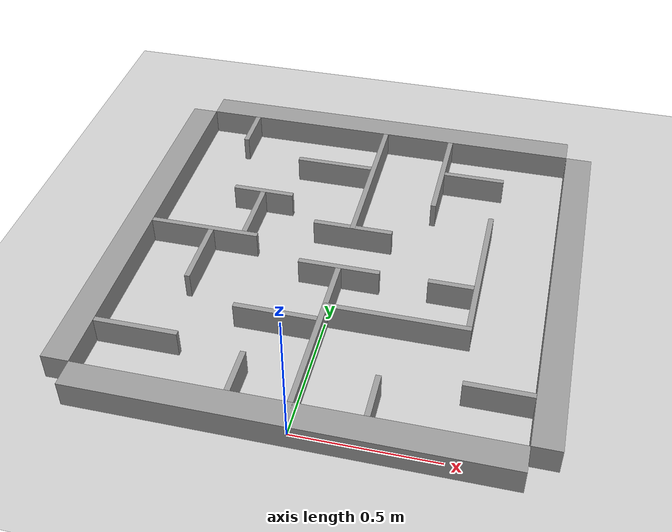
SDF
<sdf version="1.6">
 <world name="default">
  <physics type="ode">
   <ode><solver><type>quick</type><iters>50</iters><friction_model>cone_model</friction_model></solver></ode>
  </physics>
  <light name="sun" type="directional">
   <pose>0 0 10 0 -0 0</pose>
   <diffuse>0.8 0.8 0.8 1</diffuse>
   <specular>0.1 0.1 0.1 1</specular>
   <attenuation>
    <range>1000</range>
    <constant>0.9</constant>
    <linear>0.01</linear>
    <quadratic>0.001</quadratic>
   </attenuation>
   <direction>-0.5 0.5 -1</direction>
  </light>
  <model name="ground_plane">
   <static>1</static>
   <link name="link">
    <collision name="collision">
     <geometry><plane><normal>0 0 1</normal><size>100 100</size></plane></geometry>
     <surface><friction><ode><mu>100</mu><mu2>50</mu2></ode></friction></surface>
    </collision>
    <visual name="visual">
     <cast_shadows>0</cast_shadows>
     <geometry><plane><normal>0 0 1</normal><size>100 100</size></plane></geometry>
     <material>
      <script><uri>file://media/materials/scripts/gazebo.material</uri><name>Gazebo/Grey</name></script>
     </material>
    </visual>
   </link>
  </model>
  <gravity>0 0 -9.8</gravity>
  <magnetic_field>6e-06 2.3e-05 -4.2e-05</magnetic_field>
  <atmosphere type="adiabatic"/>
  <physics name="default_physics" default="0" type="ode">
   <max_step_size>0.001</max_step_size>
   <real_time_factor>1</real_time_factor>
   <real_time_update_rate>1000</real_time_update_rate>
  </physics>
  <scene><ambient>0.4 0.4 0.4 1</ambient><background>0.7 0.7 0.7 1</background><shadows>1</shadows></scene>
  <spherical_coordinates>
   <surface_model>EARTH_WGS84</surface_model>
   <latitude_deg>0</latitude_deg>
   <longitude_deg>0</longitude_deg>
   <elevation>0</elevation>
   <heading_deg>0</heading_deg>
  </spherical_coordinates>
  <model name="vector_fanal">
   <link name="link_4">
    <pose>0.033887 -0.771661 0 0 -0 0</pose>
    <inertial>
     <mass>1</mass>
     <inertia>
      <ixx>0.166667</ixx>
      <ixy>0</ixy>
      <ixz>0</ixz>
      <iyy>0.166667</iyy>
      <iyz>0</iyz>
      <izz>0.166667</izz>
     </inertia>
    </inertial>
    <visual name="visual">
     <geometry><box><size>1.5 0.1 0.1</size></box></geometry>
     <material>
      <lighting>1</lighting>
      <script><uri>file://media/materials/scripts/gazebo.material</uri><name>Gazebo/Grey</name></script>
      <ambient>0.3 0.3 0.3 1</ambient>
      <diffuse>0.7 0.7 0.7 1</diffuse>
      <specular>0.01 0.01 0.01 1</specular>
      <emissive>0 0 0 1</emissive>
      <shader type="vertex"><normal_map>__default__</normal_map></shader>
     </material>
    </visual>
    <collision name="collision">
     <geometry><box><size>1.5 0.1 0.1</size></box></geometry>
     <surface>
      <friction>
       <ode><mu>1</mu><mu2>1</mu2><fdir1>0 0 0</fdir1><slip1>0</slip1><slip2>0</slip2></ode>
       <torsional>
        <coefficient>1</coefficient>
        <patch_radius>0</patch_radius>
        <surface_radius>0</surface_radius>
        <use_patch_radius>1</use_patch_radius>
        <ode><slip>0</slip></ode>
       </torsional>
      </friction>
      <bounce><restitution_coefficient>0</restitution_coefficient><threshold>1e+06</threshold></bounce>
      <contact>
       <collide_without_contact>0</collide_without_contact>
       <collide_without_contact_bitmask>1</collide_without_contact_bitmask>
       <collide_bitmask>1</collide_bitmask>
       <ode>
        <soft_cfm>0</soft_cfm>
        <soft_erp>0.2</soft_erp>
        <kp>1e+13</kp>
        <kd>1</kd>
        <max_vel>0.01</max_vel>
        <min_depth>0</min_depth>
       </ode>
       <bullet>
        <split_impulse>1</split_impulse>
        <split_impulse_penetration_threshold>-0.01</split_impulse_penetration_threshold>
        <soft_cfm>0</soft_cfm>
        <soft_erp>0.2</soft_erp>
        <kp>1e+13</kp>
        <kd>1</kd>
       </bullet>
      </contact>
     </surface>
    </collision>
   </link>
   <link name="link_4_clone">
    <pose>0.033887 0.82834 0 0 -0 0</pose>
    <inertial>
     <mass>1</mass>
     <inertia>
      <ixx>0.166667</ixx>
      <ixy>0</ixy>
      <ixz>0</ixz>
      <iyy>0.166667</iyy>
      <iyz>0</iyz>
      <izz>0.166667</izz>
     </inertia>
    </inertial>
    <visual name="visual">
     <geometry><box><size>1.5 0.1 0.1</size></box></geometry>
     <material>
      <lighting>1</lighting>
      <script><uri>file://media/materials/scripts/gazebo.material</uri><name>Gazebo/Grey</name></script>
      <ambient>0.3 0.3 0.3 1</ambient>
      <diffuse>0.7 0.7 0.7 1</diffuse>
      <specular>0.01 0.01 0.01 1</specular>
      <emissive>0 0 0 1</emissive>
      <shader type="vertex"><normal_map>__default__</normal_map></shader>
     </material>
    </visual>
    <collision name="collision">
     <geometry><box><size>1.5 0.1 0.1</size></box></geometry>
     <surface>
      <friction>
       <ode><mu>1</mu><mu2>1</mu2><fdir1>0 0 0</fdir1><slip1>0</slip1><slip2>0</slip2></ode>
       <torsional>
        <coefficient>1</coefficient>
        <patch_radius>0</patch_radius>
        <surface_radius>0</surface_radius>
        <use_patch_radius>1</use_patch_radius>
        <ode><slip>0</slip></ode>
       </torsional>
      </friction>
      <bounce><restitution_coefficient>0</restitution_coefficient><threshold>1e+06</threshold></bounce>
      <contact>
       <collide_without_contact>0</collide_without_contact>
       <collide_without_contact_bitmask>1</collide_without_contact_bitmask>
       <collide_bitmask>1</collide_bitmask>
       <ode>
        <soft_cfm>0</soft_cfm>
        <soft_erp>0.2</soft_erp>
        <kp>1e+13</kp>
        <kd>1</kd>
        <max_vel>0.01</max_vel>
        <min_depth>0</min_depth>
       </ode>
       <bullet>
        <split_impulse>1</split_impulse>
        <split_impulse_penetration_threshold>-0.01</split_impulse_penetration_threshold>
        <soft_cfm>0</soft_cfm>
        <soft_erp>0.2</soft_erp>
        <kp>1e+13</kp>
        <kd>1</kd>
       </bullet>
      </contact>
     </surface>
    </collision>
   </link>
   <link name="link_4_clone_0">
    <pose>0.833887 0.02834 0 0 -0 1.57</pose>
    <inertial>
     <mass>1</mass>
     <inertia>
      <ixx>0.166667</ixx>
      <ixy>0</ixy>
      <ixz>0</ixz>
      <iyy>0.166667</iyy>
      <iyz>0</iyz>
      <izz>0.166667</izz>
     </inertia>
    </inertial>
    <visual name="visual">
     <geometry><box><size>1.5 0.1 0.1</size></box></geometry>
     <material>
      <lighting>1</lighting>
      <script><uri>file://media/materials/scripts/gazebo.material</uri><name>Gazebo/Grey</name></script>
      <ambient>0.3 0.3 0.3 1</ambient>
      <diffuse>0.7 0.7 0.7 1</diffuse>
      <specular>0.01 0.01 0.01 1</specular>
      <emissive>0 0 0 1</emissive>
      <shader type="vertex"><normal_map>__default__</normal_map></shader>
     </material>
    </visual>
    <collision name="collision">
     <geometry><box><size>1.5 0.1 0.1</size></box></geometry>
     <surface>
      <friction>
       <ode><mu>1</mu><mu2>1</mu2><fdir1>0 0 0</fdir1><slip1>0</slip1><slip2>0</slip2></ode>
       <torsional>
        <coefficient>1</coefficient>
        <patch_radius>0</patch_radius>
        <surface_radius>0</surface_radius>
        <use_patch_radius>1</use_patch_radius>
        <ode><slip>0</slip></ode>
       </torsional>
      </friction>
      <bounce><restitution_coefficient>0</restitution_coefficient><threshold>1e+06</threshold></bounce>
      <contact>
       <collide_without_contact>0</collide_without_contact>
       <collide_without_contact_bitmask>1</collide_without_contact_bitmask>
       <collide_bitmask>1</collide_bitmask>
       <ode>
        <soft_cfm>0</soft_cfm>
        <soft_erp>0.2</soft_erp>
        <kp>1e+13</kp>
        <kd>1</kd>
        <max_vel>0.01</max_vel>
        <min_depth>0</min_depth>
       </ode>
       <bullet>
        <split_impulse>1</split_impulse>
        <split_impulse_penetration_threshold>-0.01</split_impulse_penetration_threshold>
        <soft_cfm>0</soft_cfm>
        <soft_erp>0.2</soft_erp>
        <kp>1e+13</kp>
        <kd>1</kd>
       </bullet>
      </contact>
     </surface>
    </collision>
   </link>
   <link name="link_4_clone_0_clone">
    <pose>-0.766113 0.02834 0 0 -0 1.57</pose>
    <inertial>
     <mass>1</mass>
     <inertia>
      <ixx>0.166667</ixx>
      <ixy>0</ixy>
      <ixz>0</ixz>
      <iyy>0.166667</iyy>
      <iyz>0</iyz>
      <izz>0.166667</izz>
     </inertia>
    </inertial>
    <visual name="visual">
     <geometry><box><size>1.5 0.1 0.1</size></box></geometry>
     <material>
      <lighting>1</lighting>
      <script><uri>file://media/materials/scripts/gazebo.material</uri><name>Gazebo/Grey</name></script>
      <ambient>0.3 0.3 0.3 1</ambient>
      <diffuse>0.7 0.7 0.7 1</diffuse>
      <specular>0.01 0.01 0.01 1</specular>
      <emissive>0 0 0 1</emissive>
      <shader type="vertex"><normal_map>__default__</normal_map></shader>
     </material>
    </visual>
    <collision name="collision">
     <geometry><box><size>1.5 0.1 0.1</size></box></geometry>
     <surface>
      <friction>
       <ode><mu>1</mu><mu2>1</mu2><fdir1>0 0 0</fdir1><slip1>0</slip1><slip2>0</slip2></ode>
       <torsional>
        <coefficient>1</coefficient>
        <patch_radius>0</patch_radius>
        <surface_radius>0</surface_radius>
        <use_patch_radius>1</use_patch_radius>
        <ode><slip>0</slip></ode>
       </torsional>
      </friction>
      <bounce><restitution_coefficient>0</restitution_coefficient><threshold>1e+06</threshold></bounce>
      <contact>
       <collide_without_contact>0</collide_without_contact>
       <collide_without_contact_bitmask>1</collide_without_contact_bitmask>
       <collide_bitmask>1</collide_bitmask>
       <ode>
        <soft_cfm>0</soft_cfm>
        <soft_erp>0.2</soft_erp>
        <kp>1e+13</kp>
        <kd>1</kd>
        <max_vel>0.01</max_vel>
        <min_depth>0</min_depth>
       </ode>
       <bullet>
        <split_impulse>1</split_impulse>
        <split_impulse_penetration_threshold>-0.01</split_impulse_penetration_threshold>
        <soft_cfm>0</soft_cfm>
        <soft_erp>0.2</soft_erp>
        <kp>1e+13</kp>
        <kd>1</kd>
       </bullet>
      </contact>
     </surface>
    </collision>
   </link>
   <link name="link_5">
    <pose>-0.509003 0.02834 0 0 -0 0</pose>
    <inertial>
     <mass>2.06513</mass>
     <inertia>
      <ixx>0.344189</ixx>
      <ixy>0</ixy>
      <ixz>0</ixz>
      <iyy>0.906037</iyy>
      <iyz>0</iyz>
      <izz>0.906037</izz>
     </inertia>
    </inertial>
    <visual name="visual">
     <geometry><box><size>0.413025 0.02 0.1</size></box></geometry>
     <material>
      <lighting>1</lighting>
      <script><uri>file://media/materials/scripts/gazebo.material</uri><name>Gazebo/Grey</name></script>
      <ambient>0.3 0.3 0.3 1</ambient>
      <diffuse>0.7 0.7 0.7 1</diffuse>
      <specular>0.01 0.01 0.01 1</specular>
      <emissive>0 0 0 1</emissive>
      <shader type="vertex"><normal_map>__default__</normal_map></shader>
     </material>
    </visual>
    <collision name="collision">
     <geometry><box><size>0.413025 0.02 0.1</size></box></geometry>
     <surface>
      <friction>
       <ode><mu>1</mu><mu2>1</mu2><fdir1>0 0 0</fdir1><slip1>0</slip1><slip2>0</slip2></ode>
       <torsional>
        <coefficient>1</coefficient>
        <patch_radius>0</patch_radius>
        <surface_radius>0</surface_radius>
        <use_patch_radius>1</use_patch_radius>
        <ode><slip>0</slip></ode>
       </torsional>
      </friction>
      <bounce><restitution_coefficient>0</restitution_coefficient><threshold>1e+06</threshold></bounce>
      <contact>
       <collide_without_contact>0</collide_without_contact>
       <collide_without_contact_bitmask>1</collide_without_contact_bitmask>
       <collide_bitmask>1</collide_bitmask>
       <ode>
        <soft_cfm>0</soft_cfm>
        <soft_erp>0.2</soft_erp>
        <kp>1e+13</kp>
        <kd>1</kd>
        <max_vel>0.01</max_vel>
        <min_depth>0</min_depth>
       </ode>
       <bullet>
        <split_impulse>1</split_impulse>
        <split_impulse_penetration_threshold>-0.01</split_impulse_penetration_threshold>
        <soft_cfm>0</soft_cfm>
        <soft_erp>0.2</soft_erp>
        <kp>1e+13</kp>
        <kd>1</kd>
       </bullet>
      </contact>
     </surface>
    </collision>
   </link>
   <link name="link_5_clone">
    <pose>0.033887 -0.071661 0 0 -0 0</pose>
    <inertial>
     <mass>1</mass>
     <inertia>
      <ixx>0.166667</ixx>
      <ixy>0</ixy>
      <ixz>0</ixz>
      <iyy>0.166667</iyy>
      <iyz>0</iyz>
      <izz>0.166667</izz>
     </inertia>
    </inertial>
    <visual name="visual">
     <geometry><box><size>0.3 0.02 0.1</size></box></geometry>
     <material>
      <lighting>1</lighting>
      <script><uri>file://media/materials/scripts/gazebo.material</uri><name>Gazebo/Grey</name></script>
      <ambient>0.3 0.3 0.3 1</ambient>
      <diffuse>0.7 0.7 0.7 1</diffuse>
      <specular>0.01 0.01 0.01 1</specular>
      <emissive>0 0 0 1</emissive>
      <shader type="vertex"><normal_map>__default__</normal_map></shader>
     </material>
    </visual>
    <collision name="collision">
     <geometry><box><size>0.3 0.02 0.1</size></box></geometry>
     <surface>
      <friction>
       <ode><mu>1</mu><mu2>1</mu2><fdir1>0 0 0</fdir1><slip1>0</slip1><slip2>0</slip2></ode>
       <torsional>
        <coefficient>1</coefficient>
        <patch_radius>0</patch_radius>
        <surface_radius>0</surface_radius>
        <use_patch_radius>1</use_patch_radius>
        <ode><slip>0</slip></ode>
       </torsional>
      </friction>
      <bounce><restitution_coefficient>0</restitution_coefficient><threshold>1e+06</threshold></bounce>
      <contact>
       <collide_without_contact>0</collide_without_contact>
       <collide_without_contact_bitmask>1</collide_without_contact_bitmask>
       <collide_bitmask>1</collide_bitmask>
       <ode>
        <soft_cfm>0</soft_cfm>
        <soft_erp>0.2</soft_erp>
        <kp>1e+13</kp>
        <kd>1</kd>
        <max_vel>0.01</max_vel>
        <min_depth>0</min_depth>
       </ode>
       <bullet>
        <split_impulse>1</split_impulse>
        <split_impulse_penetration_threshold>-0.01</split_impulse_penetration_threshold>
        <soft_cfm>0</soft_cfm>
        <soft_erp>0.2</soft_erp>
        <kp>1e+13</kp>
        <kd>1</kd>
       </bullet>
      </contact>
     </surface>
    </collision>
   </link>
   <link name="link_5_clone_clone">
    <pose>0.033887 0.154222 0 0 -0 0</pose>
    <inertial>
     <mass>1</mass>
     <inertia>
      <ixx>0.166667</ixx>
      <ixy>0</ixy>
      <ixz>0</ixz>
      <iyy>0.166667</iyy>
      <iyz>0</iyz>
      <izz>0.166667</izz>
     </inertia>
    </inertial>
    <visual name="visual">
     <geometry><box><size>0.3 0.02 0.1</size></box></geometry>
     <material>
      <lighting>1</lighting>
      <script><uri>file://media/materials/scripts/gazebo.material</uri><name>Gazebo/Grey</name></script>
      <ambient>0.3 0.3 0.3 1</ambient>
      <diffuse>0.7 0.7 0.7 1</diffuse>
      <specular>0.01 0.01 0.01 1</specular>
      <emissive>0 0 0 1</emissive>
      <shader type="vertex"><normal_map>__default__</normal_map></shader>
     </material>
    </visual>
    <collision name="collision">
     <geometry><box><size>0.3 0.02 0.1</size></box></geometry>
     <surface>
      <friction>
       <ode><mu>1</mu><mu2>1</mu2><fdir1>0 0 0</fdir1><slip1>0</slip1><slip2>0</slip2></ode>
       <torsional>
        <coefficient>1</coefficient>
        <patch_radius>0</patch_radius>
        <surface_radius>0</surface_radius>
        <use_patch_radius>1</use_patch_radius>
        <ode><slip>0</slip></ode>
       </torsional>
      </friction>
      <bounce><restitution_coefficient>0</restitution_coefficient><threshold>1e+06</threshold></bounce>
      <contact>
       <collide_without_contact>0</collide_without_contact>
       <collide_without_contact_bitmask>1</collide_without_contact_bitmask>
       <collide_bitmask>1</collide_bitmask>
       <ode>
        <soft_cfm>0</soft_cfm>
        <soft_erp>0.2</soft_erp>
        <kp>1e+13</kp>
        <kd>1</kd>
        <max_vel>0.01</max_vel>
        <min_depth>0</min_depth>
       </ode>
       <bullet>
        <split_impulse>1</split_impulse>
        <split_impulse_penetration_threshold>-0.01</split_impulse_penetration_threshold>
        <soft_cfm>0</soft_cfm>
        <soft_erp>0.2</soft_erp>
        <kp>1e+13</kp>
        <kd>1</kd>
       </bullet>
      </contact>
     </surface>
    </collision>
   </link>
   <link name="link_5_clone_clone_0">
    <pose>0.033887 -0.40691 0 0 -0 1.57</pose>
    <inertial>
     <mass>2.25878</mass>
     <inertia><ixx>0.376464</ixx><ixy>0</ixy><ixz>0</ixz><iyy>1.14861</iyy><iyz>0</iyz><izz>1.14861</izz></inertia>
    </inertial>
    <visual name="visual">
     <geometry><box><size>0.67763 0.02 0.1</size></box></geometry>
     <material>
      <lighting>1</lighting>
      <script><uri>file://media/materials/scripts/gazebo.material</uri><name>Gazebo/Grey</name></script>
      <ambient>0.3 0.3 0.3 1</ambient>
      <diffuse>0.7 0.7 0.7 1</diffuse>
      <specular>0.01 0.01 0.01 1</specular>
      <emissive>0 0 0 1</emissive>
      <shader type="vertex"><normal_map>__default__</normal_map></shader>
     </material>
    </visual>
    <collision name="collision">
     <geometry><box><size>0.67763 0.02 0.1</size></box></geometry>
     <surface>
      <friction>
       <ode><mu>1</mu><mu2>1</mu2><fdir1>0 0 0</fdir1><slip1>0</slip1><slip2>0</slip2></ode>
       <torsional>
        <coefficient>1</coefficient>
        <patch_radius>0</patch_radius>
        <surface_radius>0</surface_radius>
        <use_patch_radius>1</use_patch_radius>
        <ode><slip>0</slip></ode>
       </torsional>
      </friction>
      <bounce><restitution_coefficient>0</restitution_coefficient><threshold>1e+06</threshold></bounce>
      <contact>
       <collide_without_contact>0</collide_without_contact>
       <collide_without_contact_bitmask>1</collide_without_contact_bitmask>
       <collide_bitmask>1</collide_bitmask>
       <ode>
        <soft_cfm>0</soft_cfm>
        <soft_erp>0.2</soft_erp>
        <kp>1e+13</kp>
        <kd>1</kd>
        <max_vel>0.01</max_vel>
        <min_depth>0</min_depth>
       </ode>
       <bullet>
        <split_impulse>1</split_impulse>
        <split_impulse_penetration_threshold>-0.01</split_impulse_penetration_threshold>
        <soft_cfm>0</soft_cfm>
        <soft_erp>0.2</soft_erp>
        <kp>1e+13</kp>
        <kd>1</kd>
       </bullet>
      </contact>
     </surface>
    </collision>
   </link>
   <link name="link_5_clone_clone_0_clone">
    <pose>0.033887 0.462189 0 0 -0 1.57</pose>
    <inertial>
     <mass>2.10764</mass>
     <inertia>
      <ixx>0.351273</ixx>
      <ixy>0</ixy>
      <ixz>0</ixz>
      <iyy>0.955839</iyy>
      <iyz>0</iyz>
      <izz>0.955839</izz>
     </inertia>
    </inertial>
    <visual name="visual">
     <geometry><box><size>0.632286 0.02 0.1</size></box></geometry>
     <material>
      <lighting>1</lighting>
      <script><uri>file://media/materials/scripts/gazebo.material</uri><name>Gazebo/Grey</name></script>
      <ambient>0.3 0.3 0.3 1</ambient>
      <diffuse>0.7 0.7 0.7 1</diffuse>
      <specular>0.01 0.01 0.01 1</specular>
      <emissive>0 0 0 1</emissive>
      <shader type="vertex"><normal_map>__default__</normal_map></shader>
     </material>
    </visual>
    <collision name="collision">
     <geometry><box><size>0.632286 0.02 0.1</size></box></geometry>
     <surface>
      <friction>
       <ode><mu>1</mu><mu2>1</mu2><fdir1>0 0 0</fdir1><slip1>0</slip1><slip2>0</slip2></ode>
       <torsional>
        <coefficient>1</coefficient>
        <patch_radius>0</patch_radius>
        <surface_radius>0</surface_radius>
        <use_patch_radius>1</use_patch_radius>
        <ode><slip>0</slip></ode>
       </torsional>
      </friction>
      <bounce><restitution_coefficient>0</restitution_coefficient><threshold>1e+06</threshold></bounce>
      <contact>
       <collide_without_contact>0</collide_without_contact>
       <collide_without_contact_bitmask>1</collide_without_contact_bitmask>
       <collide_bitmask>1</collide_bitmask>
       <ode>
        <soft_cfm>0</soft_cfm>
        <soft_erp>0.2</soft_erp>
        <kp>1e+13</kp>
        <kd>1</kd>
        <max_vel>0.01</max_vel>
        <min_depth>0</min_depth>
       </ode>
       <bullet>
        <split_impulse>1</split_impulse>
        <split_impulse_penetration_threshold>-0.01</split_impulse_penetration_threshold>
        <soft_cfm>0</soft_cfm>
        <soft_erp>0.2</soft_erp>
        <kp>1e+13</kp>
        <kd>1</kd>
       </bullet>
      </contact>
     </surface>
    </collision>
   </link>
   <link name="link_5_clone_clone_0_clone_0">
    <pose>0.533722 0.02834 0 0 -0 1.57</pose>
    <inertial>
     <mass>1.95613</mass>
     <inertia><ixx>0.326023</ixx><ixy>0</ixy><ixz>0</ixz><iyy>0.78677</iyy><iyz>0</iyz><izz>0.78677</izz></inertia>
    </inertial>
    <visual name="visual">
     <geometry><box><size>0.586837 0.02 0.1</size></box></geometry>
     <material>
      <lighting>1</lighting>
      <script><uri>file://media/materials/scripts/gazebo.material</uri><name>Gazebo/Grey</name></script>
      <ambient>0.3 0.3 0.3 1</ambient>
      <diffuse>0.7 0.7 0.7 1</diffuse>
      <specular>0.01 0.01 0.01 1</specular>
      <emissive>0 0 0 1</emissive>
      <shader type="vertex"><normal_map>__default__</normal_map></shader>
     </material>
    </visual>
    <collision name="collision">
     <geometry><box><size>0.586837 0.02 0.1</size></box></geometry>
     <surface>
      <friction>
       <ode><mu>1</mu><mu2>1</mu2><fdir1>0 0 0</fdir1><slip1>0</slip1><slip2>0</slip2></ode>
       <torsional>
        <coefficient>1</coefficient>
        <patch_radius>0</patch_radius>
        <surface_radius>0</surface_radius>
        <use_patch_radius>1</use_patch_radius>
        <ode><slip>0</slip></ode>
       </torsional>
      </friction>
      <bounce><restitution_coefficient>0</restitution_coefficient><threshold>1e+06</threshold></bounce>
      <contact>
       <collide_without_contact>0</collide_without_contact>
       <collide_without_contact_bitmask>1</collide_without_contact_bitmask>
       <collide_bitmask>1</collide_bitmask>
       <ode>
        <soft_cfm>0</soft_cfm>
        <soft_erp>0.2</soft_erp>
        <kp>1e+13</kp>
        <kd>1</kd>
        <max_vel>0.01</max_vel>
        <min_depth>0</min_depth>
       </ode>
       <bullet>
        <split_impulse>1</split_impulse>
        <split_impulse_penetration_threshold>-0.01</split_impulse_penetration_threshold>
        <soft_cfm>0</soft_cfm>
        <soft_erp>0.2</soft_erp>
        <kp>1e+13</kp>
        <kd>1</kd>
       </bullet>
      </contact>
     </surface>
    </collision>
   </link>
   <link name="link_5_clone_clone_0_clone_0_clone">
    <pose>0.307404 0.563042 0 0 -0 1.57</pose>
    <inertial>
     <mass>1.43527</mass>
     <inertia>
      <ixx>0.239213</ixx>
      <ixy>0</ixy>
      <ixz>0</ixz>
      <iyy>0.365998</iyy>
      <iyz>0</iyz>
      <izz>0.365998</izz>
     </inertia>
    </inertial>
    <visual name="visual">
     <geometry><box><size>0.43058 0.02 0.1</size></box></geometry>
     <material>
      <lighting>1</lighting>
      <script><uri>file://media/materials/scripts/gazebo.material</uri><name>Gazebo/Grey</name></script>
      <ambient>0.3 0.3 0.3 1</ambient>
      <diffuse>0.7 0.7 0.7 1</diffuse>
      <specular>0.01 0.01 0.01 1</specular>
      <emissive>0 0 0 1</emissive>
      <shader type="vertex"><normal_map>__default__</normal_map></shader>
     </material>
    </visual>
    <collision name="collision">
     <geometry><box><size>0.43058 0.02 0.1</size></box></geometry>
     <surface>
      <friction>
       <ode><mu>1</mu><mu2>1</mu2><fdir1>0 0 0</fdir1><slip1>0</slip1><slip2>0</slip2></ode>
       <torsional>
        <coefficient>1</coefficient>
        <patch_radius>0</patch_radius>
        <surface_radius>0</surface_radius>
        <use_patch_radius>1</use_patch_radius>
        <ode><slip>0</slip></ode>
       </torsional>
      </friction>
      <bounce><restitution_coefficient>0</restitution_coefficient><threshold>1e+06</threshold></bounce>
      <contact>
       <collide_without_contact>0</collide_without_contact>
       <collide_without_contact_bitmask>1</collide_without_contact_bitmask>
       <collide_bitmask>1</collide_bitmask>
       <ode>
        <soft_cfm>0</soft_cfm>
        <soft_erp>0.2</soft_erp>
        <kp>1e+13</kp>
        <kd>1</kd>
        <max_vel>0.01</max_vel>
        <min_depth>0</min_depth>
       </ode>
       <bullet>
        <split_impulse>1</split_impulse>
        <split_impulse_penetration_threshold>-0.01</split_impulse_penetration_threshold>
        <soft_cfm>0</soft_cfm>
        <soft_erp>0.2</soft_erp>
        <kp>1e+13</kp>
        <kd>1</kd>
       </bullet>
      </contact>
     </surface>
    </collision>
   </link>
   <link name="link_5_clone_clone_1">
    <pose>-0.126383 -0.34543 0 0 -0 0</pose>
    <inertial>
     <mass>1</mass>
     <inertia>
      <ixx>0.166667</ixx>
      <ixy>0</ixy>
      <ixz>0</ixz>
      <iyy>0.166667</iyy>
      <iyz>0</iyz>
      <izz>0.166667</izz>
     </inertia>
    </inertial>
    <visual name="visual">
     <geometry><box><size>0.3 0.02 0.1</size></box></geometry>
     <material>
      <lighting>1</lighting>
      <script><uri>file://media/materials/scripts/gazebo.material</uri><name>Gazebo/Grey</name></script>
      <ambient>0.3 0.3 0.3 1</ambient>
      <diffuse>0.7 0.7 0.7 1</diffuse>
      <specular>0.01 0.01 0.01 1</specular>
      <emissive>0 0 0 1</emissive>
      <shader type="vertex"><normal_map>__default__</normal_map></shader>
     </material>
    </visual>
    <collision name="collision">
     <geometry><box><size>0.3 0.02 0.1</size></box></geometry>
     <surface>
      <friction>
       <ode><mu>1</mu><mu2>1</mu2><fdir1>0 0 0</fdir1><slip1>0</slip1><slip2>0</slip2></ode>
       <torsional>
        <coefficient>1</coefficient>
        <patch_radius>0</patch_radius>
        <surface_radius>0</surface_radius>
        <use_patch_radius>1</use_patch_radius>
        <ode><slip>0</slip></ode>
       </torsional>
      </friction>
      <bounce><restitution_coefficient>0</restitution_coefficient><threshold>1e+06</threshold></bounce>
      <contact>
       <collide_without_contact>0</collide_without_contact>
       <collide_without_contact_bitmask>1</collide_without_contact_bitmask>
       <collide_bitmask>1</collide_bitmask>
       <ode>
        <soft_cfm>0</soft_cfm>
        <soft_erp>0.2</soft_erp>
        <kp>1e+13</kp>
        <kd>1</kd>
        <max_vel>0.01</max_vel>
        <min_depth>0</min_depth>
       </ode>
       <bullet>
        <split_impulse>1</split_impulse>
        <split_impulse_penetration_threshold>-0.01</split_impulse_penetration_threshold>
        <soft_cfm>0</soft_cfm>
        <soft_erp>0.2</soft_erp>
        <kp>1e+13</kp>
        <kd>1</kd>
       </bullet>
      </contact>
     </surface>
    </collision>
   </link>
   <link name="link_5_clone_clone_1_clone">
    <pose>-0.126365 0.529198 0 0 -0 0</pose>
    <inertial>
     <mass>1</mass>
     <inertia>
      <ixx>0.166667</ixx>
      <ixy>0</ixy>
      <ixz>0</ixz>
      <iyy>0.166667</iyy>
      <iyz>0</iyz>
      <izz>0.166667</izz>
     </inertia>
    </inertial>
    <visual name="visual">
     <geometry><box><size>0.3 0.02 0.1</size></box></geometry>
     <material>
      <lighting>1</lighting>
      <script><uri>file://media/materials/scripts/gazebo.material</uri><name>Gazebo/Grey</name></script>
      <ambient>0.3 0.3 0.3 1</ambient>
      <diffuse>0.7 0.7 0.7 1</diffuse>
      <specular>0.01 0.01 0.01 1</specular>
      <emissive>0 0 0 1</emissive>
      <shader type="vertex"><normal_map>__default__</normal_map></shader>
     </material>
    </visual>
    <collision name="collision">
     <geometry><box><size>0.3 0.02 0.1</size></box></geometry>
     <surface>
      <friction>
       <ode><mu>1</mu><mu2>1</mu2><fdir1>0 0 0</fdir1><slip1>0</slip1><slip2>0</slip2></ode>
       <torsional>
        <coefficient>1</coefficient>
        <patch_radius>0</patch_radius>
        <surface_radius>0</surface_radius>
        <use_patch_radius>1</use_patch_radius>
        <ode><slip>0</slip></ode>
       </torsional>
      </friction>
      <bounce><restitution_coefficient>0</restitution_coefficient><threshold>1e+06</threshold></bounce>
      <contact>
       <collide_without_contact>0</collide_without_contact>
       <collide_without_contact_bitmask>1</collide_without_contact_bitmask>
       <collide_bitmask>1</collide_bitmask>
       <ode>
        <soft_cfm>0</soft_cfm>
        <soft_erp>0.2</soft_erp>
        <kp>1e+13</kp>
        <kd>1</kd>
        <max_vel>0.01</max_vel>
        <min_depth>0</min_depth>
       </ode>
       <bullet>
        <split_impulse>1</split_impulse>
        <split_impulse_penetration_threshold>-0.01</split_impulse_penetration_threshold>
        <soft_cfm>0</soft_cfm>
        <soft_erp>0.2</soft_erp>
        <kp>1e+13</kp>
        <kd>1</kd>
       </bullet>
      </contact>
     </surface>
    </collision>
   </link>
   <link name="link_5_clone_clone_1_clone_0">
    <pose>0.286063 -0.275087 0 0 -0 0</pose>
    <inertial>
     <mass>1.7193</mass>
     <inertia>
      <ixx>0.28655</ixx>
      <ixy>0</ixy>
      <ixz>0</ixz>
      <iyy>0.566794</iyy>
      <iyz>0</iyz>
      <izz>0.566794</izz>
     </inertia>
    </inertial>
    <visual name="visual">
     <geometry><box><size>0.515786 0.02 0.1</size></box></geometry>
     <material>
      <lighting>1</lighting>
      <script><uri>file://media/materials/scripts/gazebo.material</uri><name>Gazebo/Grey</name></script>
      <ambient>0.3 0.3 0.3 1</ambient>
      <diffuse>0.7 0.7 0.7 1</diffuse>
      <specular>0.01 0.01 0.01 1</specular>
      <emissive>0 0 0 1</emissive>
      <shader type="vertex"><normal_map>__default__</normal_map></shader>
     </material>
    </visual>
    <collision name="collision">
     <geometry><box><size>0.515786 0.02 0.1</size></box></geometry>
     <surface>
      <friction>
       <ode><mu>1</mu><mu2>1</mu2><fdir1>0 0 0</fdir1><slip1>0</slip1><slip2>0</slip2></ode>
       <torsional>
        <coefficient>1</coefficient>
        <patch_radius>0</patch_radius>
        <surface_radius>0</surface_radius>
        <use_patch_radius>1</use_patch_radius>
        <ode><slip>0</slip></ode>
       </torsional>
      </friction>
      <bounce><restitution_coefficient>0</restitution_coefficient><threshold>1e+06</threshold></bounce>
      <contact>
       <collide_without_contact>0</collide_without_contact>
       <collide_without_contact_bitmask>1</collide_without_contact_bitmask>
       <collide_bitmask>1</collide_bitmask>
       <ode>
        <soft_cfm>0</soft_cfm>
        <soft_erp>0.2</soft_erp>
        <kp>1e+13</kp>
        <kd>1</kd>
        <max_vel>0.01</max_vel>
        <min_depth>0</min_depth>
       </ode>
       <bullet>
        <split_impulse>1</split_impulse>
        <split_impulse_penetration_threshold>-0.01</split_impulse_penetration_threshold>
        <soft_cfm>0</soft_cfm>
        <soft_erp>0.2</soft_erp>
        <kp>1e+13</kp>
        <kd>1</kd>
       </bullet>
      </contact>
     </surface>
    </collision>
   </link>
   <link name="link_5_clone_clone_2">
    <pose>-0.480968 -0.113574 0 0 -0 1.57</pose>
    <inertial>
     <mass>0.879488</mass>
     <inertia>
      <ixx>0.146582</ixx>
      <ixy>0</ixy>
      <ixz>0</ixz>
      <iyy>0.129981</iyy>
      <iyz>0</iyz>
      <izz>0.129981</izz>
     </inertia>
    </inertial>
    <visual name="visual">
     <geometry><box><size>0.263846 0.02 0.1</size></box></geometry>
     <material>
      <lighting>1</lighting>
      <script><uri>file://media/materials/scripts/gazebo.material</uri><name>Gazebo/Grey</name></script>
      <ambient>0.3 0.3 0.3 1</ambient>
      <diffuse>0.7 0.7 0.7 1</diffuse>
      <specular>0.01 0.01 0.01 1</specular>
      <emissive>0 0 0 1</emissive>
      <shader type="vertex"><normal_map>__default__</normal_map></shader>
     </material>
    </visual>
    <collision name="collision">
     <geometry><box><size>0.263846 0.02 0.1</size></box></geometry>
     <surface>
      <friction>
       <ode><mu>1</mu><mu2>1</mu2><fdir1>0 0 0</fdir1><slip1>0</slip1><slip2>0</slip2></ode>
       <torsional>
        <coefficient>1</coefficient>
        <patch_radius>0</patch_radius>
        <surface_radius>0</surface_radius>
        <use_patch_radius>1</use_patch_radius>
        <ode><slip>0</slip></ode>
       </torsional>
      </friction>
      <bounce><restitution_coefficient>0</restitution_coefficient><threshold>1e+06</threshold></bounce>
      <contact>
       <collide_without_contact>0</collide_without_contact>
       <collide_without_contact_bitmask>1</collide_without_contact_bitmask>
       <collide_bitmask>1</collide_bitmask>
       <ode>
        <soft_cfm>0</soft_cfm>
        <soft_erp>0.2</soft_erp>
        <kp>1e+13</kp>
        <kd>1</kd>
        <max_vel>0.01</max_vel>
        <min_depth>0</min_depth>
       </ode>
       <bullet>
        <split_impulse>1</split_impulse>
        <split_impulse_penetration_threshold>-0.01</split_impulse_penetration_threshold>
        <soft_cfm>0</soft_cfm>
        <soft_erp>0.2</soft_erp>
        <kp>1e+13</kp>
        <kd>1</kd>
       </bullet>
      </contact>
     </surface>
    </collision>
   </link>
   <link name="link_5_clone_clone_2_clone">
    <pose>-0.175087 -0.635546 0 0 -0 1.57</pose>
    <inertial>
     <mass>0.574042</mass>
     <inertia>
      <ixx>0.0956741</ixx>
      <ixy>0</ixy>
      <ixz>0</ixz>
      <iyy>0.0636004</iyy>
      <iyz>0</iyz>
      <izz>0.0636004</izz>
     </inertia>
    </inertial>
    <visual name="visual">
     <geometry><box><size>0.172211 0.02 0.1</size></box></geometry>
     <material>
      <lighting>1</lighting>
      <script><uri>file://media/materials/scripts/gazebo.material</uri><name>Gazebo/Grey</name></script>
      <ambient>0.3 0.3 0.3 1</ambient>
      <diffuse>0.7 0.7 0.7 1</diffuse>
      <specular>0.01 0.01 0.01 1</specular>
      <emissive>0 0 0 1</emissive>
      <shader type="vertex"><normal_map>__default__</normal_map></shader>
     </material>
    </visual>
    <collision name="collision">
     <geometry><box><size>0.172211 0.02 0.1</size></box></geometry>
     <surface>
      <friction>
       <ode><mu>1</mu><mu2>1</mu2><fdir1>0 0 0</fdir1><slip1>0</slip1><slip2>0</slip2></ode>
       <torsional>
        <coefficient>1</coefficient>
        <patch_radius>0</patch_radius>
        <surface_radius>0</surface_radius>
        <use_patch_radius>1</use_patch_radius>
        <ode><slip>0</slip></ode>
       </torsional>
      </friction>
      <bounce><restitution_coefficient>0</restitution_coefficient><threshold>1e+06</threshold></bounce>
      <contact>
       <collide_without_contact>0</collide_without_contact>
       <collide_without_contact_bitmask>1</collide_without_contact_bitmask>
       <collide_bitmask>1</collide_bitmask>
       <ode>
        <soft_cfm>0</soft_cfm>
        <soft_erp>0.2</soft_erp>
        <kp>1e+13</kp>
        <kd>1</kd>
        <max_vel>0.01</max_vel>
        <min_depth>0</min_depth>
       </ode>
       <bullet>
        <split_impulse>1</split_impulse>
        <split_impulse_penetration_threshold>-0.01</split_impulse_penetration_threshold>
        <soft_cfm>0</soft_cfm>
        <soft_erp>0.2</soft_erp>
        <kp>1e+13</kp>
        <kd>1</kd>
       </bullet>
      </contact>
     </surface>
    </collision>
   </link>
   <link name="link_5_clone_clone_2_clone_0">
    <pose>-0.356129 0.170305 0 0 -0 1.57</pose>
    <inertial>
     <mass>0.879488</mass>
     <inertia>
      <ixx>0.146582</ixx>
      <ixy>0</ixy>
      <ixz>0</ixz>
      <iyy>0.129981</iyy>
      <iyz>0</iyz>
      <izz>0.129981</izz>
     </inertia>
    </inertial>
    <visual name="visual">
     <geometry><box><size>0.263846 0.02 0.1</size></box></geometry>
     <material>
      <lighting>1</lighting>
      <script><uri>file://media/materials/scripts/gazebo.material</uri><name>Gazebo/Grey</name></script>
      <ambient>0.3 0.3 0.3 1</ambient>
      <diffuse>0.7 0.7 0.7 1</diffuse>
      <specular>0.01 0.01 0.01 1</specular>
      <emissive>0 0 0 1</emissive>
      <shader type="vertex"><normal_map>__default__</normal_map></shader>
     </material>
    </visual>
    <collision name="collision">
     <geometry><box><size>0.263846 0.02 0.1</size></box></geometry>
     <surface>
      <friction>
       <ode><mu>1</mu><mu2>1</mu2><fdir1>0 0 0</fdir1><slip1>0</slip1><slip2>0</slip2></ode>
       <torsional>
        <coefficient>1</coefficient>
        <patch_radius>0</patch_radius>
        <surface_radius>0</surface_radius>
        <use_patch_radius>1</use_patch_radius>
        <ode><slip>0</slip></ode>
       </torsional>
      </friction>
      <bounce><restitution_coefficient>0</restitution_coefficient><threshold>1e+06</threshold></bounce>
      <contact>
       <collide_without_contact>0</collide_without_contact>
       <collide_without_contact_bitmask>1</collide_without_contact_bitmask>
       <collide_bitmask>1</collide_bitmask>
       <ode>
        <soft_cfm>0</soft_cfm>
        <soft_erp>0.2</soft_erp>
        <kp>1e+13</kp>
        <kd>1</kd>
        <max_vel>0.01</max_vel>
        <min_depth>0</min_depth>
       </ode>
       <bullet>
        <split_impulse>1</split_impulse>
        <split_impulse_penetration_threshold>-0.01</split_impulse_penetration_threshold>
        <soft_cfm>0</soft_cfm>
        <soft_erp>0.2</soft_erp>
        <kp>1e+13</kp>
        <kd>1</kd>
       </bullet>
      </contact>
     </surface>
    </collision>
   </link>
   <link name="link_5_clone_clone_2_clone_clone">
    <pose>-0.525733 0.692226 0 0 -0 1.57</pose>
    <inertial>
     <mass>0.574042</mass>
     <inertia>
      <ixx>0.0956741</ixx>
      <ixy>0</ixy>
      <ixz>0</ixz>
      <iyy>0.0636004</iyy>
      <iyz>0</iyz>
      <izz>0.0636004</izz>
     </inertia>
    </inertial>
    <visual name="visual">
     <geometry><box><size>0.172211 0.02 0.1</size></box></geometry>
     <material>
      <lighting>1</lighting>
      <script><uri>file://media/materials/scripts/gazebo.material</uri><name>Gazebo/Grey</name></script>
      <ambient>0.3 0.3 0.3 1</ambient>
      <diffuse>0.7 0.7 0.7 1</diffuse>
      <specular>0.01 0.01 0.01 1</specular>
      <emissive>0 0 0 1</emissive>
      <shader type="vertex"><normal_map>__default__</normal_map></shader>
     </material>
    </visual>
    <collision name="collision">
     <geometry><box><size>0.172211 0.02 0.1</size></box></geometry>
     <surface>
      <friction>
       <ode><mu>1</mu><mu2>1</mu2><fdir1>0 0 0</fdir1><slip1>0</slip1><slip2>0</slip2></ode>
       <torsional>
        <coefficient>1</coefficient>
        <patch_radius>0</patch_radius>
        <surface_radius>0</surface_radius>
        <use_patch_radius>1</use_patch_radius>
        <ode><slip>0</slip></ode>
       </torsional>
      </friction>
      <bounce><restitution_coefficient>0</restitution_coefficient><threshold>1e+06</threshold></bounce>
      <contact>
       <collide_without_contact>0</collide_without_contact>
       <collide_without_contact_bitmask>1</collide_without_contact_bitmask>
       <collide_bitmask>1</collide_bitmask>
       <ode>
        <soft_cfm>0</soft_cfm>
        <soft_erp>0.2</soft_erp>
        <kp>1e+13</kp>
        <kd>1</kd>
        <max_vel>0.01</max_vel>
        <min_depth>0</min_depth>
       </ode>
       <bullet>
        <split_impulse>1</split_impulse>
        <split_impulse_penetration_threshold>-0.01</split_impulse_penetration_threshold>
        <soft_cfm>0</soft_cfm>
        <soft_erp>0.2</soft_erp>
        <kp>1e+13</kp>
        <kd>1</kd>
       </bullet>
      </contact>
     </surface>
    </collision>
   </link>
   <link name="link_5_clone_clone_2_clone_clone_0">
    <pose>0.280559 -0.635547 0 0 -0 1.57</pose>
    <inertial>
     <mass>0.574042</mass>
     <inertia>
      <ixx>0.0956741</ixx>
      <ixy>0</ixy>
      <ixz>0</ixz>
      <iyy>0.0636004</iyy>
      <iyz>0</iyz>
      <izz>0.0636004</izz>
     </inertia>
    </inertial>
    <visual name="visual">
     <geometry><box><size>0.172211 0.02 0.1</size></box></geometry>
     <material>
      <lighting>1</lighting>
      <script><uri>file://media/materials/scripts/gazebo.material</uri><name>Gazebo/Grey</name></script>
      <ambient>0.3 0.3 0.3 1</ambient>
      <diffuse>0.7 0.7 0.7 1</diffuse>
      <specular>0.01 0.01 0.01 1</specular>
      <emissive>0 0 0 1</emissive>
      <shader type="vertex"><normal_map>__default__</normal_map></shader>
     </material>
    </visual>
    <collision name="collision">
     <geometry><box><size>0.172211 0.02 0.1</size></box></geometry>
     <surface>
      <friction>
       <ode><mu>1</mu><mu2>1</mu2><fdir1>0 0 0</fdir1><slip1>0</slip1><slip2>0</slip2></ode>
       <torsional>
        <coefficient>1</coefficient>
        <patch_radius>0</patch_radius>
        <surface_radius>0</surface_radius>
        <use_patch_radius>1</use_patch_radius>
        <ode><slip>0</slip></ode>
       </torsional>
      </friction>
      <bounce><restitution_coefficient>0</restitution_coefficient><threshold>1e+06</threshold></bounce>
      <contact>
       <collide_without_contact>0</collide_without_contact>
       <collide_without_contact_bitmask>1</collide_without_contact_bitmask>
       <collide_bitmask>1</collide_bitmask>
       <ode>
        <soft_cfm>0</soft_cfm>
        <soft_erp>0.2</soft_erp>
        <kp>1e+13</kp>
        <kd>1</kd>
        <max_vel>0.01</max_vel>
        <min_depth>0</min_depth>
       </ode>
       <bullet>
        <split_impulse>1</split_impulse>
        <split_impulse_penetration_threshold>-0.01</split_impulse_penetration_threshold>
        <soft_cfm>0</soft_cfm>
        <soft_erp>0.2</soft_erp>
        <kp>1e+13</kp>
        <kd>1</kd>
       </bullet>
      </contact>
     </surface>
    </collision>
   </link>
   <link name="link_5_clone_clone_3">
    <pose>-0.565516 -0.519644 0 0 -0 0</pose>
    <inertial>
     <mass>1</mass>
     <inertia>
      <ixx>0.166667</ixx>
      <ixy>0</ixy>
      <ixz>0</ixz>
      <iyy>0.166667</iyy>
      <iyz>0</iyz>
      <izz>0.166667</izz>
     </inertia>
    </inertial>
    <visual name="visual">
     <geometry><box><size>0.3 0.02 0.1</size></box></geometry>
     <material>
      <lighting>1</lighting>
      <script><uri>file://media/materials/scripts/gazebo.material</uri><name>Gazebo/Grey</name></script>
      <ambient>0.3 0.3 0.3 1</ambient>
      <diffuse>0.7 0.7 0.7 1</diffuse>
      <specular>0.01 0.01 0.01 1</specular>
      <emissive>0 0 0 1</emissive>
      <shader type="vertex"><normal_map>__default__</normal_map></shader>
     </material>
    </visual>
    <collision name="collision">
     <geometry><box><size>0.3 0.02 0.1</size></box></geometry>
     <surface>
      <friction>
       <ode><mu>1</mu><mu2>1</mu2><fdir1>0 0 0</fdir1><slip1>0</slip1><slip2>0</slip2></ode>
       <torsional>
        <coefficient>1</coefficient>
        <patch_radius>0</patch_radius>
        <surface_radius>0</surface_radius>
        <use_patch_radius>1</use_patch_radius>
        <ode><slip>0</slip></ode>
       </torsional>
      </friction>
      <bounce><restitution_coefficient>0</restitution_coefficient><threshold>1e+06</threshold></bounce>
      <contact>
       <collide_without_contact>0</collide_without_contact>
       <collide_without_contact_bitmask>1</collide_without_contact_bitmask>
       <collide_bitmask>1</collide_bitmask>
       <ode>
        <soft_cfm>0</soft_cfm>
        <soft_erp>0.2</soft_erp>
        <kp>1e+13</kp>
        <kd>1</kd>
        <max_vel>0.01</max_vel>
        <min_depth>0</min_depth>
       </ode>
       <bullet>
        <split_impulse>1</split_impulse>
        <split_impulse_penetration_threshold>-0.01</split_impulse_penetration_threshold>
        <soft_cfm>0</soft_cfm>
        <soft_erp>0.2</soft_erp>
        <kp>1e+13</kp>
        <kd>1</kd>
       </bullet>
      </contact>
     </surface>
    </collision>
   </link>
   <link name="link_5_clone_clone_3_clone">
    <pose>0.441603 -0.07303 0 0 -0 0</pose>
    <inertial>
     <mass>0.545901</mass>
     <inertia>
      <ixx>0.0909837</ixx>
      <ixy>0</ixy>
      <ixz>0</ixz>
      <iyy>0.0590488</iyy>
      <iyz>0</iyz>
      <izz>0.0590488</izz>
     </inertia>
    </inertial>
    <visual name="visual">
     <geometry><box><size>0.163771 0.02 0.1</size></box></geometry>
     <material>
      <lighting>1</lighting>
      <script><uri>file://media/materials/scripts/gazebo.material</uri><name>Gazebo/Grey</name></script>
      <ambient>0.3 0.3 0.3 1</ambient>
      <diffuse>0.7 0.7 0.7 1</diffuse>
      <specular>0.01 0.01 0.01 1</specular>
      <emissive>0 0 0 1</emissive>
      <shader type="vertex"><normal_map>__default__</normal_map></shader>
     </material>
    </visual>
    <collision name="collision">
     <geometry><box><size>0.163771 0.02 0.1</size></box></geometry>
     <surface>
      <friction>
       <ode><mu>1</mu><mu2>1</mu2><fdir1>0 0 0</fdir1><slip1>0</slip1><slip2>0</slip2></ode>
       <torsional>
        <coefficient>1</coefficient>
        <patch_radius>0</patch_radius>
        <surface_radius>0</surface_radius>
        <use_patch_radius>1</use_patch_radius>
        <ode><slip>0</slip></ode>
       </torsional>
      </friction>
      <bounce><restitution_coefficient>0</restitution_coefficient><threshold>1e+06</threshold></bounce>
      <contact>
       <collide_without_contact>0</collide_without_contact>
       <collide_without_contact_bitmask>1</collide_without_contact_bitmask>
       <collide_bitmask>1</collide_bitmask>
       <ode>
        <soft_cfm>0</soft_cfm>
        <soft_erp>0.2</soft_erp>
        <kp>1e+13</kp>
        <kd>1</kd>
        <max_vel>0.01</max_vel>
        <min_depth>0</min_depth>
       </ode>
       <bullet>
        <split_impulse>1</split_impulse>
        <split_impulse_penetration_threshold>-0.01</split_impulse_penetration_threshold>
        <soft_cfm>0</soft_cfm>
        <soft_erp>0.2</soft_erp>
        <kp>1e+13</kp>
        <kd>1</kd>
       </bullet>
      </contact>
     </surface>
    </collision>
   </link>
   <link name="link_5_clone_clone_clone">
    <pose>-0.356129 0.292236 0 0 -0 0</pose>
    <inertial>
     <mass>0.785547</mass>
     <inertia>
      <ixx>0.130925</ixx>
      <ixy>0</ixy>
      <ixz>0</ixz>
      <iyy>0.105858</iyy>
      <iyz>0</iyz>
      <izz>0.105858</izz>
     </inertia>
    </inertial>
    <visual name="visual">
     <geometry><box><size>0.235664 0.02 0.1</size></box></geometry>
     <material>
      <lighting>1</lighting>
      <script><uri>file://media/materials/scripts/gazebo.material</uri><name>Gazebo/Grey</name></script>
      <ambient>0.3 0.3 0.3 1</ambient>
      <diffuse>0.7 0.7 0.7 1</diffuse>
      <specular>0.01 0.01 0.01 1</specular>
      <emissive>0 0 0 1</emissive>
      <shader type="vertex"><normal_map>__default__</normal_map></shader>
     </material>
    </visual>
    <collision name="collision">
     <geometry><box><size>0.235664 0.02 0.1</size></box></geometry>
     <surface>
      <friction>
       <ode><mu>1</mu><mu2>1</mu2><fdir1>0 0 0</fdir1><slip1>0</slip1><slip2>0</slip2></ode>
       <torsional>
        <coefficient>1</coefficient>
        <patch_radius>0</patch_radius>
        <surface_radius>0</surface_radius>
        <use_patch_radius>1</use_patch_radius>
        <ode><slip>0</slip></ode>
       </torsional>
      </friction>
      <bounce><restitution_coefficient>0</restitution_coefficient><threshold>1e+06</threshold></bounce>
      <contact>
       <collide_without_contact>0</collide_without_contact>
       <collide_without_contact_bitmask>1</collide_without_contact_bitmask>
       <collide_bitmask>1</collide_bitmask>
       <ode>
        <soft_cfm>0</soft_cfm>
        <soft_erp>0.2</soft_erp>
        <kp>1e+13</kp>
        <kd>1</kd>
        <max_vel>0.01</max_vel>
        <min_depth>0</min_depth>
       </ode>
       <bullet>
        <split_impulse>1</split_impulse>
        <split_impulse_penetration_threshold>-0.01</split_impulse_penetration_threshold>
        <soft_cfm>0</soft_cfm>
        <soft_erp>0.2</soft_erp>
        <kp>1e+13</kp>
        <kd>1</kd>
       </bullet>
      </contact>
     </surface>
    </collision>
   </link>
   <link name="link_5_clone_clone_clone_clone">
    <pose>0.435407 0.563042 0 0 -0 0</pose>
    <inertial>
     <mass>0.785547</mass>
     <inertia>
      <ixx>0.130925</ixx>
      <ixy>0</ixy>
      <ixz>0</ixz>
      <iyy>0.105858</iyy>
      <iyz>0</iyz>
      <izz>0.105858</izz>
     </inertia>
    </inertial>
    <visual name="visual">
     <geometry><box><size>0.235664 0.02 0.1</size></box></geometry>
     <material>
      <lighting>1</lighting>
      <script><uri>file://media/materials/scripts/gazebo.material</uri><name>Gazebo/Grey</name></script>
      <ambient>0.3 0.3 0.3 1</ambient>
      <diffuse>0.7 0.7 0.7 1</diffuse>
      <specular>0.01 0.01 0.01 1</specular>
      <emissive>0 0 0 1</emissive>
      <shader type="vertex"><normal_map>__default__</normal_map></shader>
     </material>
    </visual>
    <collision name="collision">
     <geometry><box><size>0.235664 0.02 0.1</size></box></geometry>
     <surface>
      <friction>
       <ode><mu>1</mu><mu2>1</mu2><fdir1>0 0 0</fdir1><slip1>0</slip1><slip2>0</slip2></ode>
       <torsional>
        <coefficient>1</coefficient>
        <patch_radius>0</patch_radius>
        <surface_radius>0</surface_radius>
        <use_patch_radius>1</use_patch_radius>
        <ode><slip>0</slip></ode>
       </torsional>
      </friction>
      <bounce><restitution_coefficient>0</restitution_coefficient><threshold>1e+06</threshold></bounce>
      <contact>
       <collide_without_contact>0</collide_without_contact>
       <collide_without_contact_bitmask>1</collide_without_contact_bitmask>
       <collide_bitmask>1</collide_bitmask>
       <ode>
        <soft_cfm>0</soft_cfm>
        <soft_erp>0.2</soft_erp>
        <kp>1e+13</kp>
        <kd>1</kd>
        <max_vel>0.01</max_vel>
        <min_depth>0</min_depth>
       </ode>
       <bullet>
        <split_impulse>1</split_impulse>
        <split_impulse_penetration_threshold>-0.01</split_impulse_penetration_threshold>
        <soft_cfm>0</soft_cfm>
        <soft_erp>0.2</soft_erp>
        <kp>1e+13</kp>
        <kd>1</kd>
       </bullet>
      </contact>
     </surface>
    </collision>
   </link>
   <link name="link_5_clone_clone_clone_clone_clone">
    <pose>0.665458 -0.520072 0 0 -0 0</pose>
    <inertial>
     <mass>0.785547</mass>
     <inertia>
      <ixx>0.130925</ixx>
      <ixy>0</ixy>
      <ixz>0</ixz>
      <iyy>0.105858</iyy>
      <iyz>0</iyz>
      <izz>0.105858</izz>
     </inertia>
    </inertial>
    <visual name="visual">
     <geometry><box><size>0.235664 0.02 0.1</size></box></geometry>
     <material>
      <lighting>1</lighting>
      <script><uri>file://media/materials/scripts/gazebo.material</uri><name>Gazebo/Grey</name></script>
      <ambient>0.3 0.3 0.3 1</ambient>
      <diffuse>0.7 0.7 0.7 1</diffuse>
      <specular>0.01 0.01 0.01 1</specular>
      <emissive>0 0 0 1</emissive>
      <shader type="vertex"><normal_map>__default__</normal_map></shader>
     </material>
    </visual>
    <collision name="collision">
     <geometry><box><size>0.235664 0.02 0.1</size></box></geometry>
     <surface>
      <friction>
       <ode><mu>1</mu><mu2>1</mu2><fdir1>0 0 0</fdir1><slip1>0</slip1><slip2>0</slip2></ode>
       <torsional>
        <coefficient>1</coefficient>
        <patch_radius>0</patch_radius>
        <surface_radius>0</surface_radius>
        <use_patch_radius>1</use_patch_radius>
        <ode><slip>0</slip></ode>
       </torsional>
      </friction>
      <bounce><restitution_coefficient>0</restitution_coefficient><threshold>1e+06</threshold></bounce>
      <contact>
       <collide_without_contact>0</collide_without_contact>
       <collide_without_contact_bitmask>1</collide_without_contact_bitmask>
       <collide_bitmask>1</collide_bitmask>
       <ode>
        <soft_cfm>0</soft_cfm>
        <soft_erp>0.2</soft_erp>
        <kp>1e+13</kp>
        <kd>1</kd>
        <max_vel>0.01</max_vel>
        <min_depth>0</min_depth>
       </ode>
       <bullet>
        <split_impulse>1</split_impulse>
        <split_impulse_penetration_threshold>-0.01</split_impulse_penetration_threshold>
        <soft_cfm>0</soft_cfm>
        <soft_erp>0.2</soft_erp>
        <kp>1e+13</kp>
        <kd>1</kd>
       </bullet>
      </contact>
     </surface>
    </collision>
   </link>
   <static>1</static>
   <pose>-0.033887 0.771661 0.05 0 -0 0</pose>
  </model>
 </world>
</sdf>
